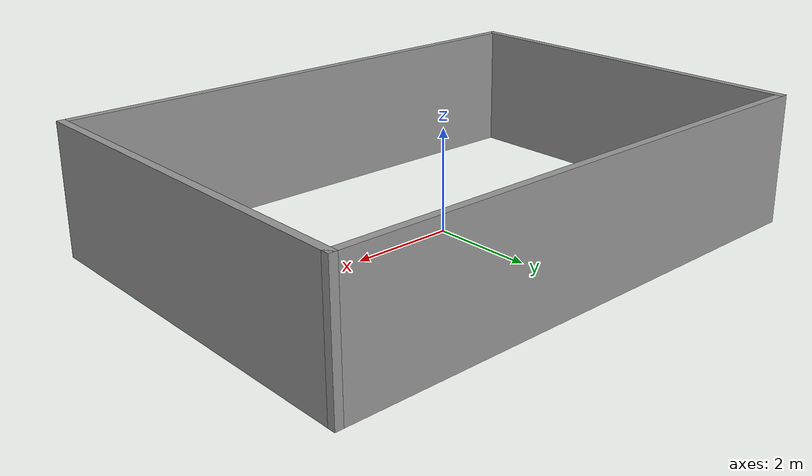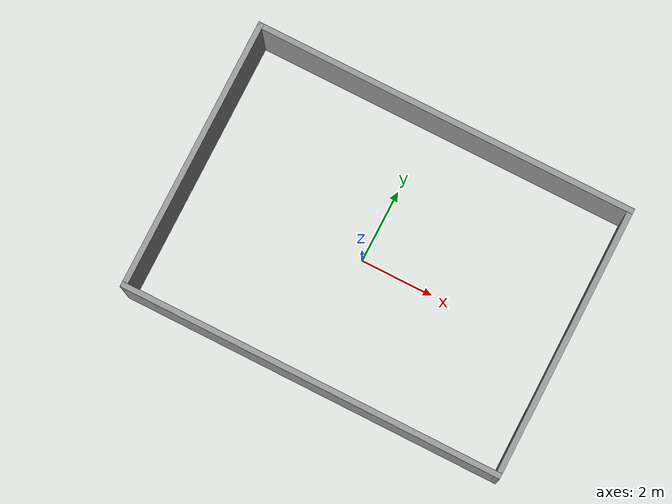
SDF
<?xml version='1.0'?>
<sdf version='1.6'>
  <model name='OutsideWallsWhite'>
    <pose frame=''>0.349561 0.181585 0 0 -0 0</pose>
    <link name='Wall_2'>
      <collision name='Wall_2_Collision'>
        <geometry>
          <box>
            <size>10.5 0.15 2.5</size>
          </box>
        </geometry>
        <pose frame=''>0 0 1.25 0 -0 0</pose>
      </collision>
      <visual name='Wall_2_Visual'>
        <pose frame=''>0 0 1.25 0 -0 0</pose>
        <geometry>
          <box>
            <size>10.5 0.15 2.5</size>
          </box>
        </geometry>
        <material>
          <script>
            <uri>file://media/materials/scripts/gazebo.material</uri>
            <name>Gazebo/Grey</name>
          </script>
          <ambient>1 1 1 1</ambient>
        </material>
      </visual>
      <pose frame=''>0 -3.675 0 0 -0 0</pose>
    </link>
    <link name='Wall_3'>
      <collision name='Wall_3_Collision'>
        <geometry>
          <box>
            <size>7.5 0.15 2.5</size>
          </box>
        </geometry>
        <pose frame=''>0 0 1.25 0 -0 0</pose>
      </collision>
      <visual name='Wall_3_Visual'>
        <pose frame=''>0 0 1.25 0 -0 0</pose>
        <geometry>
          <box>
            <size>7.5 0.15 2.5</size>
          </box>
        </geometry>
        <material>
          <script>
            <uri>file://media/materials/scripts/gazebo.material</uri>
            <name>Gazebo/Grey</name>
          </script>
          <ambient>1 1 1 1</ambient>
        </material>
      </visual>
      <pose frame=''>5.175 0 0 0 -0 1.5708</pose>
    </link>
    <link name='Wall_4'>
      <collision name='Wall_4_Collision'>
        <geometry>
          <box>
            <size>10.5 0.15 2.5</size>
          </box>
        </geometry>
        <pose frame=''>0 0 1.25 0 -0 0</pose>
      </collision>
      <visual name='Wall_4_Visual'>
        <pose frame=''>0 0 1.25 0 -0 0</pose>
        <geometry>
          <box>
            <size>10.5 0.15 2.5</size>
          </box>
        </geometry>
        <material>
          <script>
            <uri>file://media/materials/scripts/gazebo.material</uri>
            <name>Gazebo/Grey</name>
          </script>
          <ambient>1 1 1 1</ambient>
        </material>
      </visual>
      <pose frame=''>0 3.675 0 0 -0 3.14159</pose>
    </link>
    <link name='Wall_5'>
      <collision name='Wall_5_Collision'>
        <geometry>
          <box>
            <size>7.5 0.15 2.5</size>
          </box>
        </geometry>
        <pose frame=''>0 0 1.25 0 -0 0</pose>
      </collision>
      <visual name='Wall_5_Visual'>
        <pose frame=''>0 0 1.25 0 -0 0</pose>
        <geometry>
          <box>
            <size>7.5 0.15 2.5</size>
          </box>
        </geometry>
        <material>
          <script>
            <uri>file://media/materials/scripts/gazebo.material</uri>
            <name>Gazebo/Grey</name>
          </script>
          <ambient>1 1 1 1</ambient>
        </material>
      </visual>
      <pose frame=''>-5.175 0 0 0 0 -1.5708</pose>
    </link>
    <static>1</static>
  </model>
</sdf>
